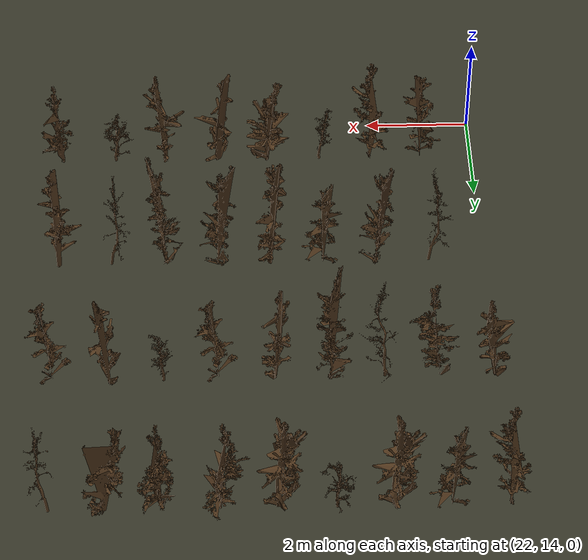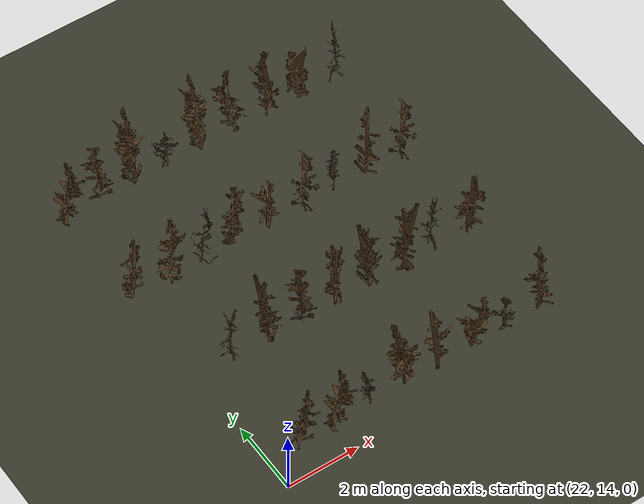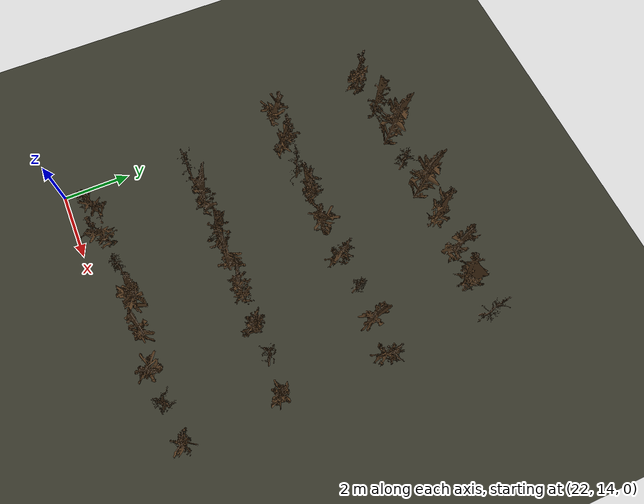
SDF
<sdf version="1.9">
 <world name="orchard_dormant_world">
  <model name="ground_plane">
   <static>true</static>
   <link name="link">
    <collision name="collision">
     <geometry><plane><normal>0 0 1</normal><size>500 500</size></plane></geometry>
    </collision>
    <visual name="visual">
     <geometry><plane><normal>0 0 1</normal><size>500 500</size></plane></geometry>
     <material><ambient>0.2 0.2 0.15 1</ambient><diffuse>0.2 0.2 0.15 1</diffuse></material>
    </visual>
   </link>
  </model>
  <model name="tree1">
   <static>true</static>
   <pose>30.000 23.830 -0.1 0 0 3.291</pose>
   <link name="link">
    <collision name="collision">
     <geometry>
      <mesh>
       <uri>file:///home/administrator/ros2/orchard_navigation_rl_ws/src/orchard_worlds/models/orchard_model/tree16_collision.stl</uri>
      </mesh>
     </geometry>
    </collision>
    <visual name="visual">
     <geometry>
      <mesh>
       <uri>file:///home/administrator/ros2/orchard_navigation_rl_ws/src/orchard_worlds/models/orchard_model/tree16.stl</uri>
      </mesh>
     </geometry>
     <material><ambient>0.3 0.2 0.1 1</ambient><diffuse>0.3 0.2 0.1 1</diffuse></material>
    </visual>
   </link>
  </model>
  <model name="tree2">
   <static>true</static>
   <pose>29.000 23.830 -0.1 0 0 5.988</pose>
   <link name="link">
    <collision name="collision">
     <geometry>
      <mesh>
       <uri>file:///home/administrator/ros2/orchard_navigation_rl_ws/src/orchard_worlds/models/orchard_model/tree11_collision.stl</uri>
      </mesh>
     </geometry>
    </collision>
    <visual name="visual">
     <geometry>
      <mesh>
       <uri>file:///home/administrator/ros2/orchard_navigation_rl_ws/src/orchard_worlds/models/orchard_model/tree11.stl</uri>
      </mesh>
     </geometry>
     <material><ambient>0.3 0.2 0.1 1</ambient><diffuse>0.3 0.2 0.1 1</diffuse></material>
    </visual>
   </link>
  </model>
  <model name="tree3">
   <static>true</static>
   <pose>28.000 23.830 -0.1 0 0 3.564</pose>
   <link name="link">
    <collision name="collision">
     <geometry>
      <mesh>
       <uri>file:///home/administrator/ros2/orchard_navigation_rl_ws/src/orchard_worlds/models/orchard_model/tree10_collision.stl</uri>
      </mesh>
     </geometry>
    </collision>
    <visual name="visual">
     <geometry>
      <mesh>
       <uri>file:///home/administrator/ros2/orchard_navigation_rl_ws/src/orchard_worlds/models/orchard_model/tree10.stl</uri>
      </mesh>
     </geometry>
     <material><ambient>0.3 0.2 0.1 1</ambient><diffuse>0.3 0.2 0.1 1</diffuse></material>
    </visual>
   </link>
  </model>
  <model name="tree4">
   <static>true</static>
   <pose>27.000 23.830 -0.1 0 0 4.460</pose>
   <link name="link">
    <collision name="collision">
     <geometry>
      <mesh>
       <uri>file:///home/administrator/ros2/orchard_navigation_rl_ws/src/orchard_worlds/models/orchard_model/tree10_collision.stl</uri>
      </mesh>
     </geometry>
    </collision>
    <visual name="visual">
     <geometry>
      <mesh>
       <uri>file:///home/administrator/ros2/orchard_navigation_rl_ws/src/orchard_worlds/models/orchard_model/tree10.stl</uri>
      </mesh>
     </geometry>
     <material><ambient>0.3 0.2 0.1 1</ambient><diffuse>0.3 0.2 0.1 1</diffuse></material>
    </visual>
   </link>
  </model>
  <model name="tree5">
   <static>true</static>
   <pose>26.000 23.830 -0.1 0 0 4.465</pose>
   <link name="link">
    <collision name="collision">
     <geometry>
      <mesh>
       <uri>file:///home/administrator/ros2/orchard_navigation_rl_ws/src/orchard_worlds/models/orchard_model/tree7_collision.stl</uri>
      </mesh>
     </geometry>
    </collision>
    <visual name="visual">
     <geometry>
      <mesh>
       <uri>file:///home/administrator/ros2/orchard_navigation_rl_ws/src/orchard_worlds/models/orchard_model/tree7.stl</uri>
      </mesh>
     </geometry>
     <material><ambient>0.3 0.2 0.1 1</ambient><diffuse>0.3 0.2 0.1 1</diffuse></material>
    </visual>
   </link>
  </model>
  <model name="tree6">
   <static>true</static>
   <pose>25.000 23.830 -0.1 0 0 0.010</pose>
   <link name="link">
    <collision name="collision">
     <geometry>
      <mesh>
       <uri>file:///home/administrator/ros2/orchard_navigation_rl_ws/src/orchard_worlds/models/orchard_model/tree14_collision.stl</uri>
      </mesh>
     </geometry>
    </collision>
    <visual name="visual">
     <geometry>
      <mesh>
       <uri>file:///home/administrator/ros2/orchard_navigation_rl_ws/src/orchard_worlds/models/orchard_model/tree14.stl</uri>
      </mesh>
     </geometry>
     <material><ambient>0.3 0.2 0.1 1</ambient><diffuse>0.3 0.2 0.1 1</diffuse></material>
    </visual>
   </link>
  </model>
  <model name="tree7">
   <static>true</static>
   <pose>24.000 23.830 -0.1 0 0 4.268</pose>
   <link name="link">
    <collision name="collision">
     <geometry>
      <mesh>
       <uri>file:///home/administrator/ros2/orchard_navigation_rl_ws/src/orchard_worlds/models/orchard_model/tree7_collision.stl</uri>
      </mesh>
     </geometry>
    </collision>
    <visual name="visual">
     <geometry>
      <mesh>
       <uri>file:///home/administrator/ros2/orchard_navigation_rl_ws/src/orchard_worlds/models/orchard_model/tree7.stl</uri>
      </mesh>
     </geometry>
     <material><ambient>0.3 0.2 0.1 1</ambient><diffuse>0.3 0.2 0.1 1</diffuse></material>
    </visual>
   </link>
  </model>
  <model name="tree8">
   <static>true</static>
   <pose>23.000 23.830 -0.1 0 0 3.818</pose>
   <link name="link">
    <collision name="collision">
     <geometry>
      <mesh>
       <uri>file:///home/administrator/ros2/orchard_navigation_rl_ws/src/orchard_worlds/models/orchard_model/tree1_collision.stl</uri>
      </mesh>
     </geometry>
    </collision>
    <visual name="visual">
     <geometry>
      <mesh>
       <uri>file:///home/administrator/ros2/orchard_navigation_rl_ws/src/orchard_worlds/models/orchard_model/tree1.stl</uri>
      </mesh>
     </geometry>
     <material><ambient>0.3 0.2 0.1 1</ambient><diffuse>0.3 0.2 0.1 1</diffuse></material>
    </visual>
   </link>
  </model>
  <model name="tree9">
   <static>true</static>
   <pose>22.000 23.830 -0.1 0 0 1.025</pose>
   <link name="link">
    <collision name="collision">
     <geometry>
      <mesh>
       <uri>file:///home/administrator/ros2/orchard_navigation_rl_ws/src/orchard_worlds/models/orchard_model/tree10_collision.stl</uri>
      </mesh>
     </geometry>
    </collision>
    <visual name="visual">
     <geometry>
      <mesh>
       <uri>file:///home/administrator/ros2/orchard_navigation_rl_ws/src/orchard_worlds/models/orchard_model/tree10.stl</uri>
      </mesh>
     </geometry>
     <material><ambient>0.3 0.2 0.1 1</ambient><diffuse>0.3 0.2 0.1 1</diffuse></material>
    </visual>
   </link>
  </model>
  <model name="tree38">
   <static>true</static>
   <pose>30.000 20.800 -0.1 0 0 1.785</pose>
   <link name="link">
    <collision name="collision">
     <geometry>
      <mesh>
       <uri>file:///home/administrator/ros2/orchard_navigation_rl_ws/src/orchard_worlds/models/orchard_model/tree1_collision.stl</uri>
      </mesh>
     </geometry>
    </collision>
    <visual name="visual">
     <geometry>
      <mesh>
       <uri>file:///home/administrator/ros2/orchard_navigation_rl_ws/src/orchard_worlds/models/orchard_model/tree1.stl</uri>
      </mesh>
     </geometry>
     <material><ambient>0.3 0.2 0.1 1</ambient><diffuse>0.3 0.2 0.1 1</diffuse></material>
    </visual>
   </link>
  </model>
  <model name="tree39">
   <static>true</static>
   <pose>29.000 20.800 -0.1 0 0 3.248</pose>
   <link name="link">
    <collision name="collision">
     <geometry>
      <mesh>
       <uri>file:///home/administrator/ros2/orchard_navigation_rl_ws/src/orchard_worlds/models/orchard_model/tree13_collision.stl</uri>
      </mesh>
     </geometry>
    </collision>
    <visual name="visual">
     <geometry>
      <mesh>
       <uri>file:///home/administrator/ros2/orchard_navigation_rl_ws/src/orchard_worlds/models/orchard_model/tree13.stl</uri>
      </mesh>
     </geometry>
     <material><ambient>0.3 0.2 0.1 1</ambient><diffuse>0.3 0.2 0.1 1</diffuse></material>
    </visual>
   </link>
  </model>
  <model name="tree40">
   <static>true</static>
   <pose>28.000 20.800 -0.1 0 0 3.781</pose>
   <link name="link">
    <collision name="collision">
     <geometry>
      <mesh>
       <uri>file:///home/administrator/ros2/orchard_navigation_rl_ws/src/orchard_worlds/models/orchard_model/tree4_collision.stl</uri>
      </mesh>
     </geometry>
    </collision>
    <visual name="visual">
     <geometry>
      <mesh>
       <uri>file:///home/administrator/ros2/orchard_navigation_rl_ws/src/orchard_worlds/models/orchard_model/tree4.stl</uri>
      </mesh>
     </geometry>
     <material><ambient>0.3 0.2 0.1 1</ambient><diffuse>0.3 0.2 0.1 1</diffuse></material>
    </visual>
   </link>
  </model>
  <model name="tree41">
   <static>true</static>
   <pose>27.000 20.800 -0.1 0 0 1.872</pose>
   <link name="link">
    <collision name="collision">
     <geometry>
      <mesh>
       <uri>file:///home/administrator/ros2/orchard_navigation_rl_ws/src/orchard_worlds/models/orchard_model/tree1_collision.stl</uri>
      </mesh>
     </geometry>
    </collision>
    <visual name="visual">
     <geometry>
      <mesh>
       <uri>file:///home/administrator/ros2/orchard_navigation_rl_ws/src/orchard_worlds/models/orchard_model/tree1.stl</uri>
      </mesh>
     </geometry>
     <material><ambient>0.3 0.2 0.1 1</ambient><diffuse>0.3 0.2 0.1 1</diffuse></material>
    </visual>
   </link>
  </model>
  <model name="tree42">
   <static>true</static>
   <pose>26.000 20.800 -0.1 0 0 0.175</pose>
   <link name="link">
    <collision name="collision">
     <geometry>
      <mesh>
       <uri>file:///home/administrator/ros2/orchard_navigation_rl_ws/src/orchard_worlds/models/orchard_model/tree8_collision.stl</uri>
      </mesh>
     </geometry>
    </collision>
    <visual name="visual">
     <geometry>
      <mesh>
       <uri>file:///home/administrator/ros2/orchard_navigation_rl_ws/src/orchard_worlds/models/orchard_model/tree8.stl</uri>
      </mesh>
     </geometry>
     <material><ambient>0.3 0.2 0.1 1</ambient><diffuse>0.3 0.2 0.1 1</diffuse></material>
    </visual>
   </link>
  </model>
  <model name="tree43">
   <static>true</static>
   <pose>25.000 20.800 -0.1 0 0 6.215</pose>
   <link name="link">
    <collision name="collision">
     <geometry>
      <mesh>
       <uri>file:///home/administrator/ros2/orchard_navigation_rl_ws/src/orchard_worlds/models/orchard_model/tree5_collision.stl</uri>
      </mesh>
     </geometry>
    </collision>
    <visual name="visual">
     <geometry>
      <mesh>
       <uri>file:///home/administrator/ros2/orchard_navigation_rl_ws/src/orchard_worlds/models/orchard_model/tree5.stl</uri>
      </mesh>
     </geometry>
     <material><ambient>0.3 0.2 0.1 1</ambient><diffuse>0.3 0.2 0.1 1</diffuse></material>
    </visual>
   </link>
  </model>
  <model name="tree44">
   <static>true</static>
   <pose>24.000 20.800 -0.1 0 0 1.127</pose>
   <link name="link">
    <collision name="collision">
     <geometry>
      <mesh>
       <uri>file:///home/administrator/ros2/orchard_navigation_rl_ws/src/orchard_worlds/models/orchard_model/tree9_collision.stl</uri>
      </mesh>
     </geometry>
    </collision>
    <visual name="visual">
     <geometry>
      <mesh>
       <uri>file:///home/administrator/ros2/orchard_navigation_rl_ws/src/orchard_worlds/models/orchard_model/tree9.stl</uri>
      </mesh>
     </geometry>
     <material><ambient>0.3 0.2 0.1 1</ambient><diffuse>0.3 0.2 0.1 1</diffuse></material>
    </visual>
   </link>
  </model>
  <model name="tree45">
   <static>true</static>
   <pose>23.000 20.800 -0.1 0 0 2.285</pose>
   <link name="link">
    <collision name="collision">
     <geometry>
      <mesh>
       <uri>file:///home/administrator/ros2/orchard_navigation_rl_ws/src/orchard_worlds/models/orchard_model/tree10_collision.stl</uri>
      </mesh>
     </geometry>
    </collision>
    <visual name="visual">
     <geometry>
      <mesh>
       <uri>file:///home/administrator/ros2/orchard_navigation_rl_ws/src/orchard_worlds/models/orchard_model/tree10.stl</uri>
      </mesh>
     </geometry>
     <material><ambient>0.3 0.2 0.1 1</ambient><diffuse>0.3 0.2 0.1 1</diffuse></material>
    </visual>
   </link>
  </model>
  <model name="tree46">
   <static>true</static>
   <pose>22.000 20.800 -0.1 0 0 2.798</pose>
   <link name="link">
    <collision name="collision">
     <geometry>
      <mesh>
       <uri>file:///home/administrator/ros2/orchard_navigation_rl_ws/src/orchard_worlds/models/orchard_model/tree8_collision.stl</uri>
      </mesh>
     </geometry>
    </collision>
    <visual name="visual">
     <geometry>
      <mesh>
       <uri>file:///home/administrator/ros2/orchard_navigation_rl_ws/src/orchard_worlds/models/orchard_model/tree8.stl</uri>
      </mesh>
     </geometry>
     <material><ambient>0.3 0.2 0.1 1</ambient><diffuse>0.3 0.2 0.1 1</diffuse></material>
    </visual>
   </link>
  </model>
  <model name="tree75">
   <static>true</static>
   <pose>30.000 17.800 -0.1 0 0 1.392</pose>
   <link name="link">
    <collision name="collision">
     <geometry>
      <mesh>
       <uri>file:///home/administrator/ros2/orchard_navigation_rl_ws/src/orchard_worlds/models/orchard_model/tree15_collision.stl</uri>
      </mesh>
     </geometry>
    </collision>
    <visual name="visual">
     <geometry>
      <mesh>
       <uri>file:///home/administrator/ros2/orchard_navigation_rl_ws/src/orchard_worlds/models/orchard_model/tree15.stl</uri>
      </mesh>
     </geometry>
     <material><ambient>0.3 0.2 0.1 1</ambient><diffuse>0.3 0.2 0.1 1</diffuse></material>
    </visual>
   </link>
  </model>
  <model name="tree76">
   <static>true</static>
   <pose>29.000 17.800 -0.1 0 0 0.186</pose>
   <link name="link">
    <collision name="collision">
     <geometry>
      <mesh>
       <uri>file:///home/administrator/ros2/orchard_navigation_rl_ws/src/orchard_worlds/models/orchard_model/tree16_collision.stl</uri>
      </mesh>
     </geometry>
    </collision>
    <visual name="visual">
     <geometry>
      <mesh>
       <uri>file:///home/administrator/ros2/orchard_navigation_rl_ws/src/orchard_worlds/models/orchard_model/tree16.stl</uri>
      </mesh>
     </geometry>
     <material><ambient>0.3 0.2 0.1 1</ambient><diffuse>0.3 0.2 0.1 1</diffuse></material>
    </visual>
   </link>
  </model>
  <model name="tree77">
   <static>true</static>
   <pose>28.000 17.800 -0.1 0 0 1.466</pose>
   <link name="link">
    <collision name="collision">
     <geometry>
      <mesh>
       <uri>file:///home/administrator/ros2/orchard_navigation_rl_ws/src/orchard_worlds/models/orchard_model/tree5_collision.stl</uri>
      </mesh>
     </geometry>
    </collision>
    <visual name="visual">
     <geometry>
      <mesh>
       <uri>file:///home/administrator/ros2/orchard_navigation_rl_ws/src/orchard_worlds/models/orchard_model/tree5.stl</uri>
      </mesh>
     </geometry>
     <material><ambient>0.3 0.2 0.1 1</ambient><diffuse>0.3 0.2 0.1 1</diffuse></material>
    </visual>
   </link>
  </model>
  <model name="tree78">
   <static>true</static>
   <pose>27.000 17.800 -0.1 0 0 4.894</pose>
   <link name="link">
    <collision name="collision">
     <geometry>
      <mesh>
       <uri>file:///home/administrator/ros2/orchard_navigation_rl_ws/src/orchard_worlds/models/orchard_model/tree5_collision.stl</uri>
      </mesh>
     </geometry>
    </collision>
    <visual name="visual">
     <geometry>
      <mesh>
       <uri>file:///home/administrator/ros2/orchard_navigation_rl_ws/src/orchard_worlds/models/orchard_model/tree5.stl</uri>
      </mesh>
     </geometry>
     <material><ambient>0.3 0.2 0.1 1</ambient><diffuse>0.3 0.2 0.1 1</diffuse></material>
    </visual>
   </link>
  </model>
  <model name="tree79">
   <static>true</static>
   <pose>26.000 17.800 -0.1 0 0 5.869</pose>
   <link name="link">
    <collision name="collision">
     <geometry>
      <mesh>
       <uri>file:///home/administrator/ros2/orchard_navigation_rl_ws/src/orchard_worlds/models/orchard_model/tree6_collision.stl</uri>
      </mesh>
     </geometry>
    </collision>
    <visual name="visual">
     <geometry>
      <mesh>
       <uri>file:///home/administrator/ros2/orchard_navigation_rl_ws/src/orchard_worlds/models/orchard_model/tree6.stl</uri>
      </mesh>
     </geometry>
     <material><ambient>0.3 0.2 0.1 1</ambient><diffuse>0.3 0.2 0.1 1</diffuse></material>
    </visual>
   </link>
  </model>
  <model name="tree80">
   <static>true</static>
   <pose>25.000 17.800 -0.1 0 0 3.577</pose>
   <link name="link">
    <collision name="collision">
     <geometry>
      <mesh>
       <uri>file:///home/administrator/ros2/orchard_navigation_rl_ws/src/orchard_worlds/models/orchard_model/tree1_collision.stl</uri>
      </mesh>
     </geometry>
    </collision>
    <visual name="visual">
     <geometry>
      <mesh>
       <uri>file:///home/administrator/ros2/orchard_navigation_rl_ws/src/orchard_worlds/models/orchard_model/tree1.stl</uri>
      </mesh>
     </geometry>
     <material><ambient>0.3 0.2 0.1 1</ambient><diffuse>0.3 0.2 0.1 1</diffuse></material>
    </visual>
   </link>
  </model>
  <model name="tree81">
   <static>true</static>
   <pose>24.000 17.800 -0.1 0 0 4.317</pose>
   <link name="link">
    <collision name="collision">
     <geometry>
      <mesh>
       <uri>file:///home/administrator/ros2/orchard_navigation_rl_ws/src/orchard_worlds/models/orchard_model/tree5_collision.stl</uri>
      </mesh>
     </geometry>
    </collision>
    <visual name="visual">
     <geometry>
      <mesh>
       <uri>file:///home/administrator/ros2/orchard_navigation_rl_ws/src/orchard_worlds/models/orchard_model/tree5.stl</uri>
      </mesh>
     </geometry>
     <material><ambient>0.3 0.2 0.1 1</ambient><diffuse>0.3 0.2 0.1 1</diffuse></material>
    </visual>
   </link>
  </model>
  <model name="tree82">
   <static>true</static>
   <pose>23.000 17.800 -0.1 0 0 0.996</pose>
   <link name="link">
    <collision name="collision">
     <geometry>
      <mesh>
       <uri>file:///home/administrator/ros2/orchard_navigation_rl_ws/src/orchard_worlds/models/orchard_model/tree16_collision.stl</uri>
      </mesh>
     </geometry>
    </collision>
    <visual name="visual">
     <geometry>
      <mesh>
       <uri>file:///home/administrator/ros2/orchard_navigation_rl_ws/src/orchard_worlds/models/orchard_model/tree16.stl</uri>
      </mesh>
     </geometry>
     <material><ambient>0.3 0.2 0.1 1</ambient><diffuse>0.3 0.2 0.1 1</diffuse></material>
    </visual>
   </link>
  </model>
  <model name="tree109">
   <static>true</static>
   <pose>30.000 14.900 -0.1 0 0 3.409</pose>
   <link name="link">
    <collision name="collision">
     <geometry>
      <mesh>
       <uri>file:///home/administrator/ros2/orchard_navigation_rl_ws/src/orchard_worlds/models/orchard_model/tree2_collision.stl</uri>
      </mesh>
     </geometry>
    </collision>
    <visual name="visual">
     <geometry>
      <mesh>
       <uri>file:///home/administrator/ros2/orchard_navigation_rl_ws/src/orchard_worlds/models/orchard_model/tree2.stl</uri>
      </mesh>
     </geometry>
     <material><ambient>0.3 0.2 0.1 1</ambient><diffuse>0.3 0.2 0.1 1</diffuse></material>
    </visual>
   </link>
  </model>
  <model name="tree110">
   <static>true</static>
   <pose>29.000 14.900 -0.1 0 0 1.664</pose>
   <link name="link">
    <collision name="collision">
     <geometry>
      <mesh>
       <uri>file:///home/administrator/ros2/orchard_navigation_rl_ws/src/orchard_worlds/models/orchard_model/tree14_collision.stl</uri>
      </mesh>
     </geometry>
    </collision>
    <visual name="visual">
     <geometry>
      <mesh>
       <uri>file:///home/administrator/ros2/orchard_navigation_rl_ws/src/orchard_worlds/models/orchard_model/tree14.stl</uri>
      </mesh>
     </geometry>
     <material><ambient>0.3 0.2 0.1 1</ambient><diffuse>0.3 0.2 0.1 1</diffuse></material>
    </visual>
   </link>
  </model>
  <model name="tree111">
   <static>true</static>
   <pose>28.000 14.900 -0.1 0 0 1.412</pose>
   <link name="link">
    <collision name="collision">
     <geometry>
      <mesh>
       <uri>file:///home/administrator/ros2/orchard_navigation_rl_ws/src/orchard_worlds/models/orchard_model/tree8_collision.stl</uri>
      </mesh>
     </geometry>
    </collision>
    <visual name="visual">
     <geometry>
      <mesh>
       <uri>file:///home/administrator/ros2/orchard_navigation_rl_ws/src/orchard_worlds/models/orchard_model/tree8.stl</uri>
      </mesh>
     </geometry>
     <material><ambient>0.3 0.2 0.1 1</ambient><diffuse>0.3 0.2 0.1 1</diffuse></material>
    </visual>
   </link>
  </model>
  <model name="tree112">
   <static>true</static>
   <pose>27.000 14.900 -0.1 0 0 5.194</pose>
   <link name="link">
    <collision name="collision">
     <geometry>
      <mesh>
       <uri>file:///home/administrator/ros2/orchard_navigation_rl_ws/src/orchard_worlds/models/orchard_model/tree13_collision.stl</uri>
      </mesh>
     </geometry>
    </collision>
    <visual name="visual">
     <geometry>
      <mesh>
       <uri>file:///home/administrator/ros2/orchard_navigation_rl_ws/src/orchard_worlds/models/orchard_model/tree13.stl</uri>
      </mesh>
     </geometry>
     <material><ambient>0.3 0.2 0.1 1</ambient><diffuse>0.3 0.2 0.1 1</diffuse></material>
    </visual>
   </link>
  </model>
  <model name="tree113">
   <static>true</static>
   <pose>26.000 14.900 -0.1 0 0 4.820</pose>
   <link name="link">
    <collision name="collision">
     <geometry>
      <mesh>
       <uri>file:///home/administrator/ros2/orchard_navigation_rl_ws/src/orchard_worlds/models/orchard_model/tree12_collision.stl</uri>
      </mesh>
     </geometry>
    </collision>
    <visual name="visual">
     <geometry>
      <mesh>
       <uri>file:///home/administrator/ros2/orchard_navigation_rl_ws/src/orchard_worlds/models/orchard_model/tree12.stl</uri>
      </mesh>
     </geometry>
     <material><ambient>0.3 0.2 0.1 1</ambient><diffuse>0.3 0.2 0.1 1</diffuse></material>
    </visual>
   </link>
  </model>
  <model name="tree114">
   <static>true</static>
   <pose>25.000 14.900 -0.1 0 0 5.749</pose>
   <link name="link">
    <collision name="collision">
     <geometry>
      <mesh>
       <uri>file:///home/administrator/ros2/orchard_navigation_rl_ws/src/orchard_worlds/models/orchard_model/tree4_collision.stl</uri>
      </mesh>
     </geometry>
    </collision>
    <visual name="visual">
     <geometry>
      <mesh>
       <uri>file:///home/administrator/ros2/orchard_navigation_rl_ws/src/orchard_worlds/models/orchard_model/tree4.stl</uri>
      </mesh>
     </geometry>
     <material><ambient>0.3 0.2 0.1 1</ambient><diffuse>0.3 0.2 0.1 1</diffuse></material>
    </visual>
   </link>
  </model>
  <model name="tree115">
   <static>true</static>
   <pose>24.000 14.900 -0.1 0 0 0.817</pose>
   <link name="link">
    <collision name="collision">
     <geometry>
      <mesh>
       <uri>file:///home/administrator/ros2/orchard_navigation_rl_ws/src/orchard_worlds/models/orchard_model/tree10_collision.stl</uri>
      </mesh>
     </geometry>
    </collision>
    <visual name="visual">
     <geometry>
      <mesh>
       <uri>file:///home/administrator/ros2/orchard_navigation_rl_ws/src/orchard_worlds/models/orchard_model/tree10.stl</uri>
      </mesh>
     </geometry>
     <material><ambient>0.3 0.2 0.1 1</ambient><diffuse>0.3 0.2 0.1 1</diffuse></material>
    </visual>
   </link>
  </model>
  <model name="tree116">
   <static>true</static>
   <pose>23.000 14.900 -0.1 0 0 0.738</pose>
   <link name="link">
    <collision name="collision">
     <geometry>
      <mesh>
       <uri>file:///home/administrator/ros2/orchard_navigation_rl_ws/src/orchard_worlds/models/orchard_model/tree1_collision.stl</uri>
      </mesh>
     </geometry>
    </collision>
    <visual name="visual">
     <geometry>
      <mesh>
       <uri>file:///home/administrator/ros2/orchard_navigation_rl_ws/src/orchard_worlds/models/orchard_model/tree1.stl</uri>
      </mesh>
     </geometry>
     <material><ambient>0.3 0.2 0.1 1</ambient><diffuse>0.3 0.2 0.1 1</diffuse></material>
    </visual>
   </link>
  </model>
 </world>
</sdf>
